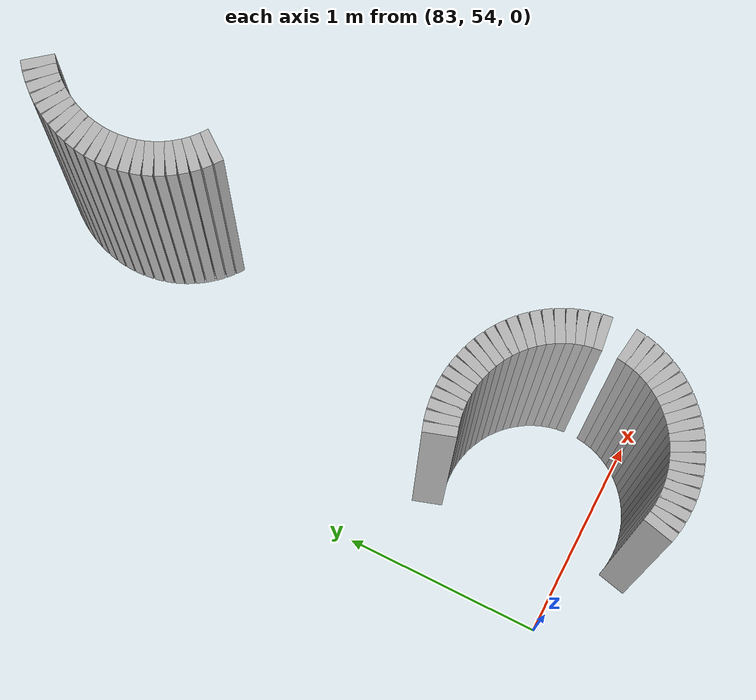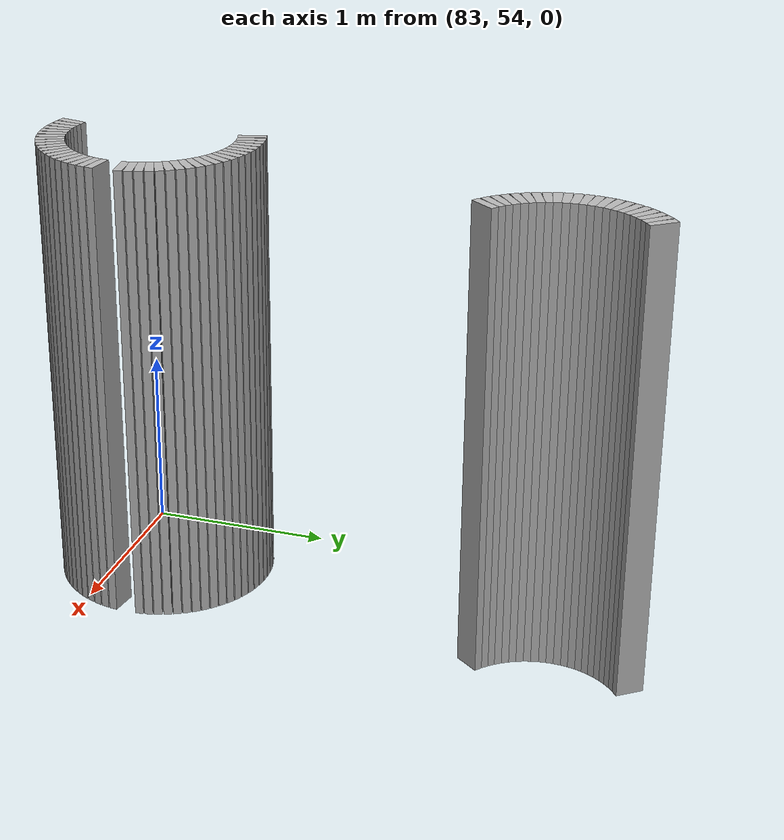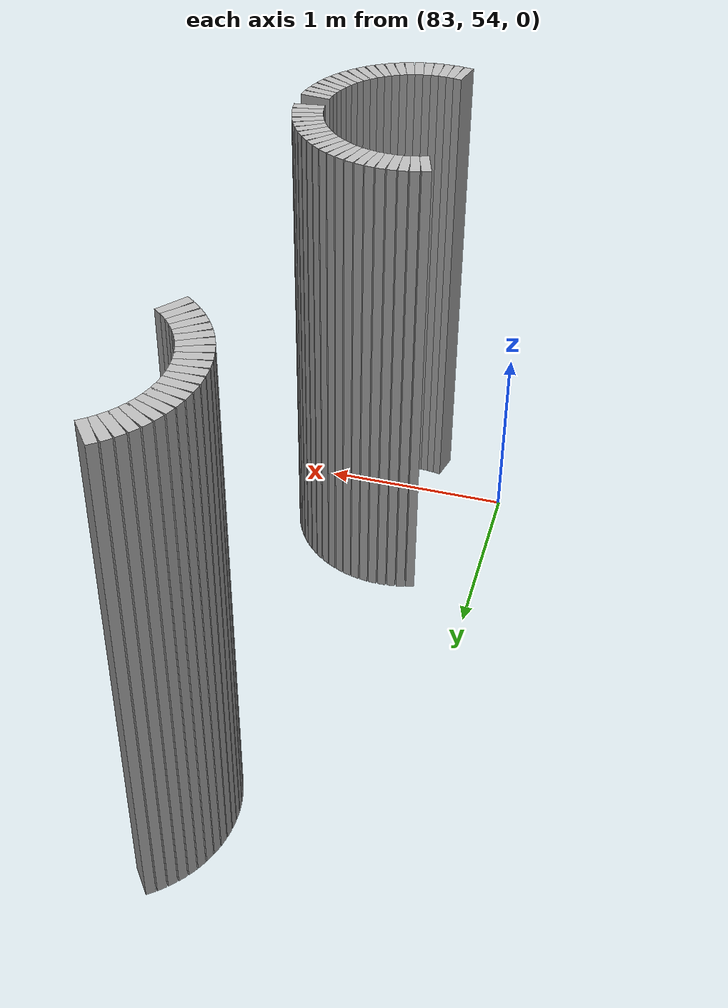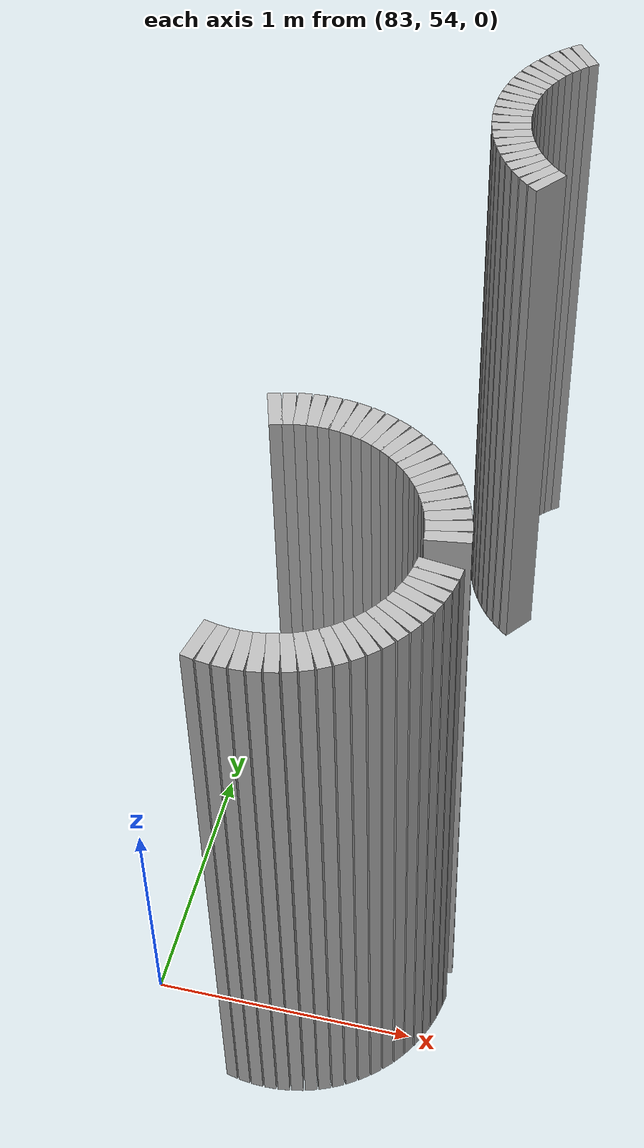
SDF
<sdf version="1.6">
 <model name="sps_1002">
  <static>1</static>
  <allow_auto_disable>0</allow_auto_disable>
  <link name="Wall1543">
   <collision name="collision"><geometry><box><size>0.0453637 0.15 2.5</size></box></geometry></collision>
   <visual name="visual">
    <geometry><box><size>0.0453637 0.15 2.5</size></box></geometry>
    <transparency>0.0</transparency>
   </visual>
   <pose>84.0053 56.1587 1.25 0 -0 2.48787</pose>
  </link>
  <link name="Wall1544">
   <collision name="collision"><geometry><box><size>0.0454539 0.15 2.5</size></box></geometry></collision>
   <visual name="visual">
    <geometry><box><size>0.0454539 0.15 2.5</size></box></geometry>
    <transparency>0.0</transparency>
   </visual>
   <pose>83.9705 56.1878 1.25 0 -0 2.40369</pose>
  </link>
  <link name="Wall1545">
   <collision name="collision"><geometry><box><size>0.0454539 0.15 2.5</size></box></geometry></collision>
   <visual name="visual">
    <geometry><box><size>0.0454539 0.15 2.5</size></box></geometry>
    <transparency>0.0</transparency>
   </visual>
   <pose>83.9383 56.2199 1.25 0 -0 2.3087</pose>
  </link>
  <link name="Wall1546">
   <collision name="collision"><geometry><box><size>0.0453637 0.15 2.5</size></box></geometry></collision>
   <visual name="visual">
    <geometry><box><size>0.0453637 0.15 2.5</size></box></geometry>
    <transparency>0.0</transparency>
   </visual>
   <pose>83.9093 56.2547 1.25 0 -0 2.22452</pose>
  </link>
  <link name="Wall1547">
   <collision name="collision"><geometry><box><size>0.0451922 0.15 2.5</size></box></geometry></collision>
   <visual name="visual">
    <geometry><box><size>0.0451922 0.15 2.5</size></box></geometry>
    <transparency>0.0</transparency>
   </visual>
   <pose>83.8834 56.2918 1.25 0 -0 2.1367</pose>
  </link>
  <link name="Wall1548">
   <collision name="collision"><geometry><box><size>0.0453724 0.15 2.5</size></box></geometry></collision>
   <visual name="visual">
    <geometry><box><size>0.0453724 0.15 2.5</size></box></geometry>
    <transparency>0.0</transparency>
   </visual>
   <pose>83.8607 56.331 1.25 0 -0 2.05189</pose>
  </link>
  <link name="Wall1549">
   <collision name="collision"><geometry><box><size>0.0454525 0.15 2.5</size></box></geometry></collision>
   <visual name="visual">
    <geometry><box><size>0.0454525 0.15 2.5</size></box></geometry>
    <transparency>0.0</transparency>
   </visual>
   <pose>83.8415 56.3721 1.25 0 -0 1.96352</pose>
  </link>
  <link name="Wall1550">
   <collision name="collision"><geometry><box><size>0.0453057 0.15 2.5</size></box></geometry></collision>
   <visual name="visual">
    <geometry><box><size>0.0453057 0.15 2.5</size></box></geometry>
    <transparency>0.0</transparency>
   </visual>
   <pose>83.826 56.4147 1.25 0 -0 1.87593</pose>
  </link>
  <link name="Wall1551">
   <collision name="collision"><geometry><box><size>0.0454345 0.15 2.5</size></box></geometry></collision>
   <visual name="visual">
    <geometry><box><size>0.0454345 0.15 2.5</size></box></geometry>
    <transparency>0.0</transparency>
   </visual>
   <pose>83.8144 56.4585 1.25 0 -0 1.78743</pose>
  </link>
  <link name="Wall1552">
   <collision name="collision"><geometry><box><size>0.0454474 0.15 2.5</size></box></geometry></collision>
   <visual name="visual">
    <geometry><box><size>0.0454474 0.15 2.5</size></box></geometry>
    <transparency>0.0</transparency>
   </visual>
   <pose>83.8064 56.5032 1.25 0 -0 1.70415</pose>
  </link>
  <link name="Wall1553">
   <collision name="collision"><geometry><box><size>0.0452007 0.15 2.5</size></box></geometry></collision>
   <visual name="visual">
    <geometry><box><size>0.0452007 0.15 2.5</size></box></geometry>
    <transparency>0.0</transparency>
   </visual>
   <pose>83.8025 56.5483 1.25 0 -0 1.60997</pose>
  </link>
  <link name="Wall1554">
   <collision name="collision"><geometry><box><size>0.0454446 0.15 2.5</size></box></geometry></collision>
   <visual name="visual">
    <geometry><box><size>0.0454446 0.15 2.5</size></box></geometry>
    <transparency>0.0</transparency>
   </visual>
   <pose>83.8025 56.5936 1.25 0 -0 1.53184</pose>
  </link>
  <link name="Wall1555">
   <collision name="collision"><geometry><box><size>0.0453869 0.15 2.5</size></box></geometry></collision>
   <visual name="visual">
    <geometry><box><size>0.0453869 0.15 2.5</size></box></geometry>
    <transparency>0.0</transparency>
   </visual>
   <pose>83.8064 56.6388 1.25 0 -0 1.43727</pose>
  </link>
  <link name="Wall1556">
   <collision name="collision"><geometry><box><size>0.0453153 0.15 2.5</size></box></geometry></collision>
   <visual name="visual">
    <geometry><box><size>0.0453153 0.15 2.5</size></box></geometry>
    <transparency>0.0</transparency>
   </visual>
   <pose>83.8144 56.6834 1.25 0 -0 1.35359</pose>
  </link>
  <link name="Wall1557">
   <collision name="collision"><geometry><box><size>0.0453029 0.15 2.5</size></box></geometry></collision>
   <visual name="visual">
    <geometry><box><size>0.0453029 0.15 2.5</size></box></geometry>
    <transparency>0.0</transparency>
   </visual>
   <pose>83.8261 56.7271 1.25 0 -0 1.2614</pose>
  </link>
  <link name="Wall1558">
   <collision name="collision"><geometry><box><size>0.0453827 0.15 2.5</size></box></geometry></collision>
   <visual name="visual">
    <geometry><box><size>0.0453827 0.15 2.5</size></box></geometry>
    <transparency>0.0</transparency>
   </visual>
   <pose>83.8416 56.7697 1.25 0 -0 1.1818</pose>
  </link>
  <link name="Wall1559">
   <collision name="collision"><geometry><box><size>0.0453724 0.15 2.5</size></box></geometry></collision>
   <visual name="visual">
    <geometry><box><size>0.0453724 0.15 2.5</size></box></geometry>
    <transparency>0.0</transparency>
   </visual>
   <pose>83.8607 56.8108 1.25 0 -0 1.0897</pose>
  </link>
  <link name="Wall1560">
   <collision name="collision"><geometry><box><size>0.0454964 0.15 2.5</size></box></geometry></collision>
   <visual name="visual">
    <geometry><box><size>0.0454964 0.15 2.5</size></box></geometry>
    <transparency>0.0</transparency>
   </visual>
   <pose>83.8834 56.8501 1.25 0 -0 1.00438</pose>
  </link>
  <link name="Wall1561">
   <collision name="collision"><geometry><box><size>0.0452185 0.15 2.5</size></box></geometry></collision>
   <visual name="visual">
    <geometry><box><size>0.0452185 0.15 2.5</size></box></geometry>
    <transparency>0.0</transparency>
   </visual>
   <pose>83.9094 56.8872 1.25 0 -0 0.914607</pose>
  </link>
  <link name="Wall1562">
   <collision name="collision"><geometry><box><size>0.0455735 0.15 2.5</size></box></geometry></collision>
   <visual name="visual">
    <geometry><box><size>0.0455735 0.15 2.5</size></box></geometry>
    <transparency>0.0</transparency>
   </visual>
   <pose>83.9387 56.9219 1.25 0 -0 0.828026</pose>
  </link>
  <link name="Wall1563">
   <collision name="collision"><geometry><box><size>0.0453148 0.15 2.5</size></box></geometry></collision>
   <visual name="visual">
    <geometry><box><size>0.0453148 0.15 2.5</size></box></geometry>
    <transparency>0.0</transparency>
   </visual>
   <pose>83.9708 56.954 1.25 0 -0 0.742526</pose>
  </link>
  <link name="Wall1564">
   <collision name="collision"><geometry><box><size>0.0453637 0.15 2.5</size></box></geometry></collision>
   <visual name="visual">
    <geometry><box><size>0.0453637 0.15 2.5</size></box></geometry>
    <transparency>0.0</transparency>
   </visual>
   <pose>84.0055 56.9831 1.25 0 -0 0.653727</pose>
  </link>
  <link name="Wall2288">
   <collision name="collision"><geometry><box><size>0.045427 0.15 2.5</size></box></geometry></collision>
   <visual name="visual">
    <geometry><box><size>0.045427 0.15 2.5</size></box></geometry>
    <transparency>0.0</transparency>
   </visual>
   <pose>83.8281 54.672 1.25 0 0 -0.657744</pose>
  </link>
  <link name="Wall2289">
   <collision name="collision"><geometry><box><size>0.0454539 0.15 2.5</size></box></geometry></collision>
   <visual name="visual">
    <geometry><box><size>0.0454539 0.15 2.5</size></box></geometry>
    <transparency>0.0</transparency>
   </visual>
   <pose>83.8628 54.6428 1.25 0 0 -0.737905</pose>
  </link>
  <link name="Wall2290">
   <collision name="collision"><geometry><box><size>0.0453186 0.15 2.5</size></box></geometry></collision>
   <visual name="visual">
    <geometry><box><size>0.0453186 0.15 2.5</size></box></geometry>
    <transparency>0.0</transparency>
   </visual>
   <pose>83.895 54.6108 1.25 0 0 -0.830173</pose>
  </link>
  <link name="Wall2291">
   <collision name="collision"><geometry><box><size>0.0453153 0.15 2.5</size></box></geometry></collision>
   <visual name="visual">
    <geometry><box><size>0.0453153 0.15 2.5</size></box></geometry>
    <transparency>0.0</transparency>
   </visual>
   <pose>83.924 54.5761 1.25 0 0 -0.91625</pose>
  </link>
  <link name="Wall2292">
   <collision name="collision"><geometry><box><size>0.0455479 0.15 2.5</size></box></geometry></collision>
   <visual name="visual">
    <geometry><box><size>0.0455479 0.15 2.5</size></box></geometry>
    <transparency>0.0</transparency>
   </visual>
   <pose>83.95 54.5389 1.25 0 0 -1.00509</pose>
  </link>
  <link name="Wall2293">
   <collision name="collision"><geometry><box><size>0.0452338 0.15 2.5</size></box></geometry></collision>
   <visual name="visual">
    <geometry><box><size>0.0452338 0.15 2.5</size></box></geometry>
    <transparency>0.0</transparency>
   </visual>
   <pose>83.9726 54.4996 1.25 0 0 -1.09267</pose>
  </link>
  <link name="Wall2294">
   <collision name="collision"><geometry><box><size>0.0452834 0.15 2.5</size></box></geometry></collision>
   <visual name="visual">
    <geometry><box><size>0.0452834 0.15 2.5</size></box></geometry>
    <transparency>0.0</transparency>
   </visual>
   <pose>83.9918 54.4586 1.25 0 0 -1.17652</pose>
  </link>
  <link name="Wall2295">
   <collision name="collision"><geometry><box><size>0.0454804 0.15 2.5</size></box></geometry></collision>
   <visual name="visual">
    <geometry><box><size>0.0454804 0.15 2.5</size></box></geometry>
    <transparency>0.0</transparency>
   </visual>
   <pose>84.0073 54.416 1.25 0 0 -1.26687</pose>
  </link>
  <link name="Wall2296">
   <collision name="collision"><geometry><box><size>0.0452557 0.15 2.5</size></box></geometry></collision>
   <visual name="visual">
    <geometry><box><size>0.0452557 0.15 2.5</size></box></geometry>
    <transparency>0.0</transparency>
   </visual>
   <pose>84.0189 54.3722 1.25 0 0 -1.3533</pose>
  </link>
  <link name="Wall2297">
   <collision name="collision"><geometry><box><size>0.0454474 0.15 2.5</size></box></geometry></collision>
   <visual name="visual">
    <geometry><box><size>0.0454474 0.15 2.5</size></box></geometry>
    <transparency>0.0</transparency>
   </visual>
   <pose>84.0268 54.3276 1.25 0 0 -1.43745</pose>
  </link>
  <link name="Wall2300">
   <collision name="collision"><geometry><box><size>0.0453869 0.15 2.5</size></box></geometry></collision>
   <visual name="visual">
    <geometry><box><size>0.0453869 0.15 2.5</size></box></geometry>
    <transparency>0.0</transparency>
   </visual>
   <pose>84.0268 54.192 1.25 0 0 -1.70433</pose>
  </link>
  <link name="Wall2301">
   <collision name="collision"><geometry><box><size>0.0454941 0.15 2.5</size></box></geometry></collision>
   <visual name="visual">
    <geometry><box><size>0.0454941 0.15 2.5</size></box></geometry>
    <transparency>0.0</transparency>
   </visual>
   <pose>84.0189 54.1473 1.25 0 0 -1.78714</pose>
  </link>
  <link name="Wall2302">
   <collision name="collision"><geometry><box><size>0.0453057 0.15 2.5</size></box></geometry></collision>
   <visual name="visual">
    <geometry><box><size>0.0453057 0.15 2.5</size></box></geometry>
    <transparency>0.0</transparency>
   </visual>
   <pose>84.0073 54.1035 1.25 0 0 -1.87593</pose>
  </link>
  <link name="Wall2303">
   <collision name="collision"><geometry><box><size>0.0452271 0.15 2.5</size></box></geometry></collision>
   <visual name="visual">
    <geometry><box><size>0.0452271 0.15 2.5</size></box></geometry>
    <transparency>0.0</transparency>
   </visual>
   <pose>83.9918 54.061 1.25 0 0 -1.96559</pose>
  </link>
  <link name="Wall2304">
   <collision name="collision"><geometry><box><size>0.0455348 0.15 2.5</size></box></geometry></collision>
   <visual name="visual">
    <geometry><box><size>0.0455348 0.15 2.5</size></box></geometry>
    <transparency>0.0</transparency>
   </visual>
   <pose>83.9726 54.0199 1.25 0 0 -2.05003</pose>
  </link>
  <link name="Wall2305">
   <collision name="collision"><geometry><box><size>0.045342 0.15 2.5</size></box></geometry></collision>
   <visual name="visual">
    <geometry><box><size>0.045342 0.15 2.5</size></box></geometry>
    <transparency>0.0</transparency>
   </visual>
   <pose>83.9499 53.9806 1.25 0 0 -2.13938</pose>
  </link>
  <link name="Wall2306">
   <collision name="collision"><geometry><box><size>0.0453637 0.15 2.5</size></box></geometry></collision>
   <visual name="visual">
    <geometry><box><size>0.0453637 0.15 2.5</size></box></geometry>
    <transparency>0.0</transparency>
   </visual>
   <pose>83.9239 53.9435 1.25 0 0 -2.22452</pose>
  </link>
  <link name="Wall2307">
   <collision name="collision"><geometry><box><size>0.0454388 0.15 2.5</size></box></geometry></collision>
   <visual name="visual">
    <geometry><box><size>0.0454388 0.15 2.5</size></box></geometry>
    <transparency>0.0</transparency>
   </visual>
   <pose>83.8946 53.9088 1.25 0 0 -2.31629</pose>
  </link>
  <link name="Wall2308">
   <collision name="collision"><geometry><box><size>0.0453148 0.15 2.5</size></box></geometry></collision>
   <visual name="visual">
    <geometry><box><size>0.0453148 0.15 2.5</size></box></geometry>
    <transparency>0.0</transparency>
   </visual>
   <pose>83.8625 53.8768 1.25 0 0 -2.39907</pose>
  </link>
  <link name="Wall2309">
   <collision name="collision"><geometry><box><size>0.0453637 0.15 2.5</size></box></geometry></collision>
   <visual name="visual">
    <geometry><box><size>0.0453637 0.15 2.5</size></box></geometry>
    <transparency>0.0</transparency>
   </visual>
   <pose>83.8278 53.8477 1.25 0 0 -2.48787</pose>
  </link>
  <link name="Wall2310">
   <collision name="collision"><geometry><box><size>0.045342 0.15 2.5</size></box></geometry></collision>
   <visual name="visual">
    <geometry><box><size>0.045342 0.15 2.5</size></box></geometry>
    <transparency>0.0</transparency>
   </visual>
   <pose>83.7907 53.8217 1.25 0 0 -2.57301</pose>
  </link>
  <link name="Wall2311">
   <collision name="collision"><geometry><box><size>0.0453183 0.15 2.5</size></box></geometry></collision>
   <visual name="visual">
    <geometry><box><size>0.0453183 0.15 2.5</size></box></geometry>
    <transparency>0.0</transparency>
   </visual>
   <pose>83.7515 53.799 1.25 0 0 -2.65987</pose>
  </link>
  <link name="Wall2312">
   <collision name="collision"><geometry><box><size>0.0453596 0.15 2.5</size></box></geometry></collision>
   <visual name="visual">
    <geometry><box><size>0.0453596 0.15 2.5</size></box></geometry>
    <transparency>0.0</transparency>
   </visual>
   <pose>83.7105 53.7799 1.25 0 0 -2.75384</pose>
  </link>
  <link name="Wall2313">
   <collision name="collision"><geometry><box><size>0.0453611 0.15 2.5</size></box></geometry></collision>
   <visual name="visual">
    <geometry><box><size>0.0453611 0.15 2.5</size></box></geometry>
    <transparency>0.0</transparency>
   </visual>
   <pose>83.6679 53.7644 1.25 0 0 -2.83261</pose>
  </link>
  <link name="Wall2314">
   <collision name="collision"><geometry><box><size>0.045468 0.15 2.5</size></box></geometry></collision>
   <visual name="visual">
    <geometry><box><size>0.045468 0.15 2.5</size></box></geometry>
    <transparency>0.0</transparency>
   </visual>
   <pose>83.624 53.7527 1.25 0 0 -2.92787</pose>
  </link>
  <link name="Wall2315">
   <collision name="collision"><geometry><box><size>0.0451973 0.15 2.5</size></box></geometry></collision>
   <visual name="visual">
    <geometry><box><size>0.0451973 0.15 2.5</size></box></geometry>
    <transparency>0.0</transparency>
   </visual>
   <pose>83.5794 53.7449 1.25 0 0 -3.00886</pose>
  </link>
  <link name="Wall2316">
   <collision name="collision"><geometry><box><size>0.0453938 0.15 2.5</size></box></geometry></collision>
   <visual name="visual">
    <geometry><box><size>0.0453938 0.15 2.5</size></box></geometry>
    <transparency>0.0</transparency>
   </visual>
   <pose>83.5344 53.7409 1.25 0 0 -3.09721</pose>
  </link>
  <link name="Wall2317">
   <collision name="collision"><geometry><box><size>0.0454548 0.15 2.5</size></box></geometry></collision>
   <visual name="visual">
    <geometry><box><size>0.0454548 0.15 2.5</size></box></geometry>
    <transparency>0.0</transparency>
   </visual>
   <pose>83.489 53.7409 1.25 0 -0 3.09727</pose>
  </link>
  <link name="Wall2318">
   <collision name="collision"><geometry><box><size>0.0454394 0.15 2.5</size></box></geometry></collision>
   <visual name="visual">
    <geometry><box><size>0.0454394 0.15 2.5</size></box></geometry>
    <transparency>0.0</transparency>
   </visual>
   <pose>83.4437 53.7449 1.25 0 -0 3.00957</pose>
  </link>
  <link name="Wall2319">
   <collision name="collision"><geometry><box><size>0.0452689 0.15 2.5</size></box></geometry></collision>
   <visual name="visual">
    <geometry><box><size>0.0452689 0.15 2.5</size></box></geometry>
    <transparency>0.0</transparency>
   </visual>
   <pose>83.3991 53.7528 1.25 0 -0 2.92278</pose>
  </link>
  <link name="Wall2349">
   <collision name="collision"><geometry><box><size>0.0453057 0.15 2.5</size></box></geometry></collision>
   <visual name="visual">
    <geometry><box><size>0.0453057 0.15 2.5</size></box></geometry>
    <transparency>0.0</transparency>
   </visual>
   <pose>83.3557 54.7555 1.25 0 -0 0.305135</pose>
  </link>
  <link name="Wall2350">
   <collision name="collision"><geometry><box><size>0.0454476 0.15 2.5</size></box></geometry></collision>
   <visual name="visual">
    <geometry><box><size>0.0454476 0.15 2.5</size></box></geometry>
    <transparency>0.0</transparency>
   </visual>
   <pose>83.3995 54.7672 1.25 0 -0 0.217941</pose>
  </link>
  <link name="Wall2351">
   <collision name="collision"><geometry><box><size>0.0453551 0.15 2.5</size></box></geometry></collision>
   <visual name="visual">
    <geometry><box><size>0.0453551 0.15 2.5</size></box></geometry>
    <transparency>0.0</transparency>
   </visual>
   <pose>83.4441 54.775 1.25 0 -0 0.128194</pose>
  </link>
  <link name="Wall2352">
   <collision name="collision"><geometry><box><size>0.0452719 0.15 2.5</size></box></geometry></collision>
   <visual name="visual">
    <geometry><box><size>0.0452719 0.15 2.5</size></box></geometry>
    <transparency>0.0</transparency>
   </visual>
   <pose>83.4892 54.7789 1.25 0 -0 0.044505</pose>
  </link>
  <link name="Wall2353">
   <collision name="collision"><geometry><box><size>0.0454548 0.15 2.5</size></box></geometry></collision>
   <visual name="visual">
    <geometry><box><size>0.0454548 0.15 2.5</size></box></geometry>
    <transparency>0.0</transparency>
   </visual>
   <pose>83.5346 54.7789 1.25 0 0 -0.0443258</pose>
  </link>
  <link name="Wall2354">
   <collision name="collision"><geometry><box><size>0.0453869 0.15 2.5</size></box></geometry></collision>
   <visual name="visual">
    <geometry><box><size>0.0453869 0.15 2.5</size></box></geometry>
    <transparency>0.0</transparency>
   </visual>
   <pose>83.5798 54.7749 1.25 0 0 -0.133529</pose>
  </link>
  <link name="Wall2355">
   <collision name="collision"><geometry><box><size>0.0452557 0.15 2.5</size></box></geometry></collision>
   <visual name="visual">
    <geometry><box><size>0.0452557 0.15 2.5</size></box></geometry>
    <transparency>0.0</transparency>
   </visual>
   <pose>83.6244 54.767 1.25 0 0 -0.217499</pose>
  </link>
  <link name="Wall2356">
   <collision name="collision"><geometry><box><size>0.0454804 0.15 2.5</size></box></geometry></collision>
   <visual name="visual">
    <geometry><box><size>0.0454804 0.15 2.5</size></box></geometry>
    <transparency>0.0</transparency>
   </visual>
   <pose>83.6681 54.7553 1.25 0 0 -0.303926</pose>
  </link>
  <link name="Wall2357">
   <collision name="collision"><geometry><box><size>0.0452834 0.15 2.5</size></box></geometry></collision>
   <visual name="visual">
    <geometry><box><size>0.0452834 0.15 2.5</size></box></geometry>
    <transparency>0.0</transparency>
   </visual>
   <pose>83.7107 54.7398 1.25 0 0 -0.394273</pose>
  </link>
  <link name="Wall2358">
   <collision name="collision"><geometry><box><size>0.045288 0.15 2.5</size></box></geometry></collision>
   <visual name="visual">
    <geometry><box><size>0.045288 0.15 2.5</size></box></geometry>
    <transparency>0.0</transparency>
   </visual>
   <pose>83.7518 54.7207 1.25 0 0 -0.47751</pose>
  </link>
  <link name="Wall2359">
   <collision name="collision"><geometry><box><size>0.045342 0.15 2.5</size></box></geometry></collision>
   <visual name="visual">
    <geometry><box><size>0.045342 0.15 2.5</size></box></geometry>
    <transparency>0.0</transparency>
   </visual>
   <pose>83.791 54.6981 1.25 0 0 -0.568588</pose>
  </link>
 </model>
</sdf>
